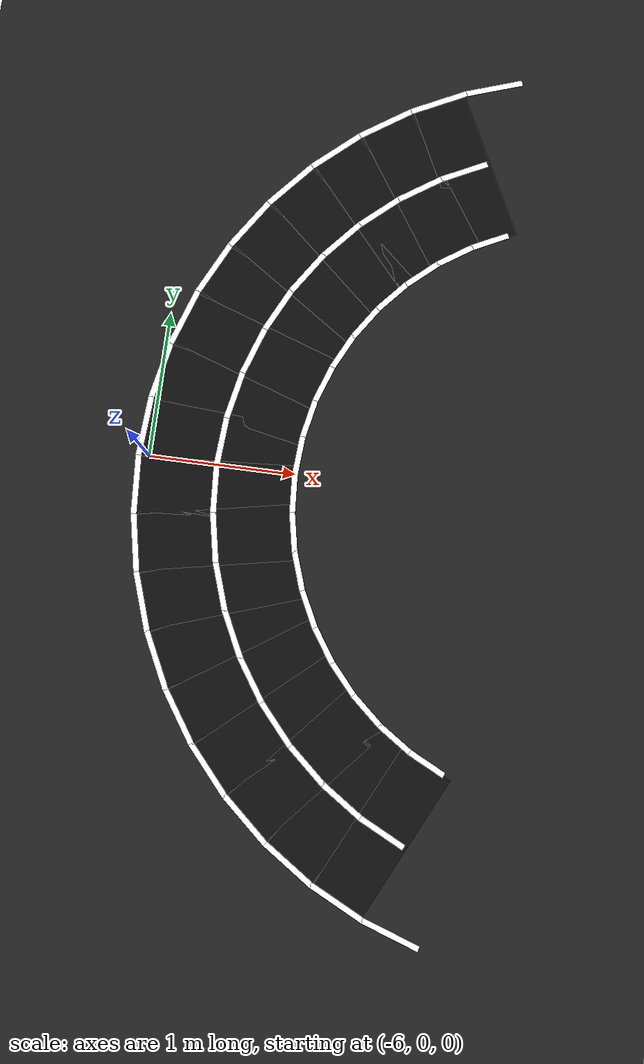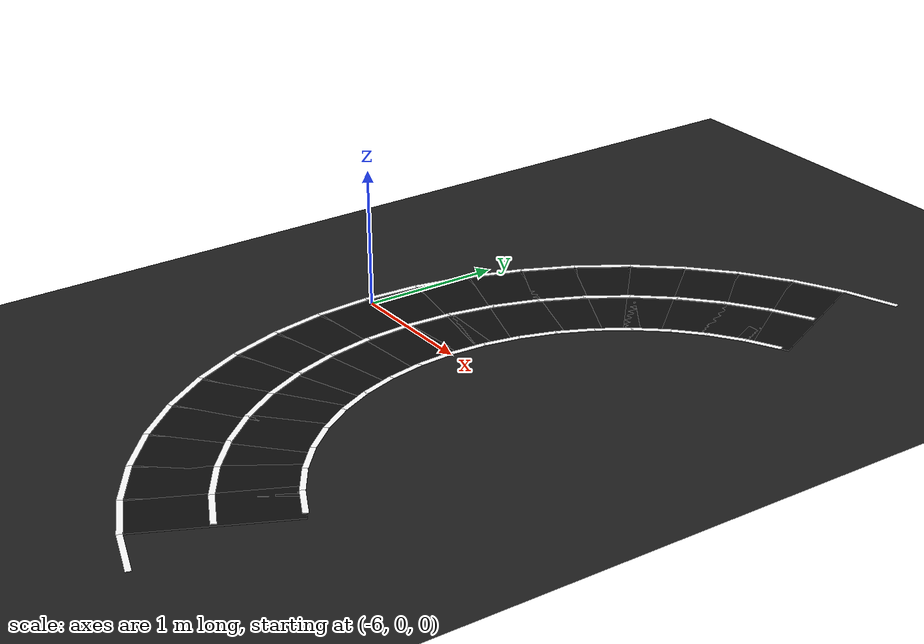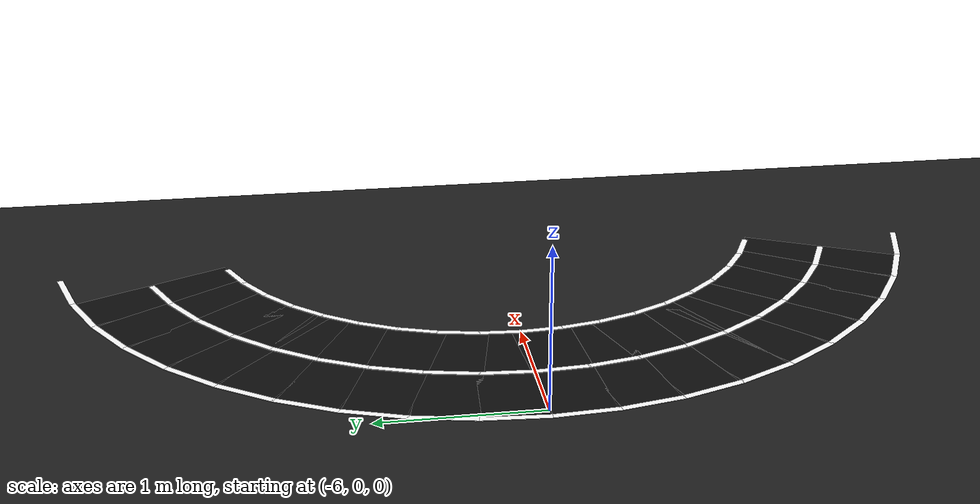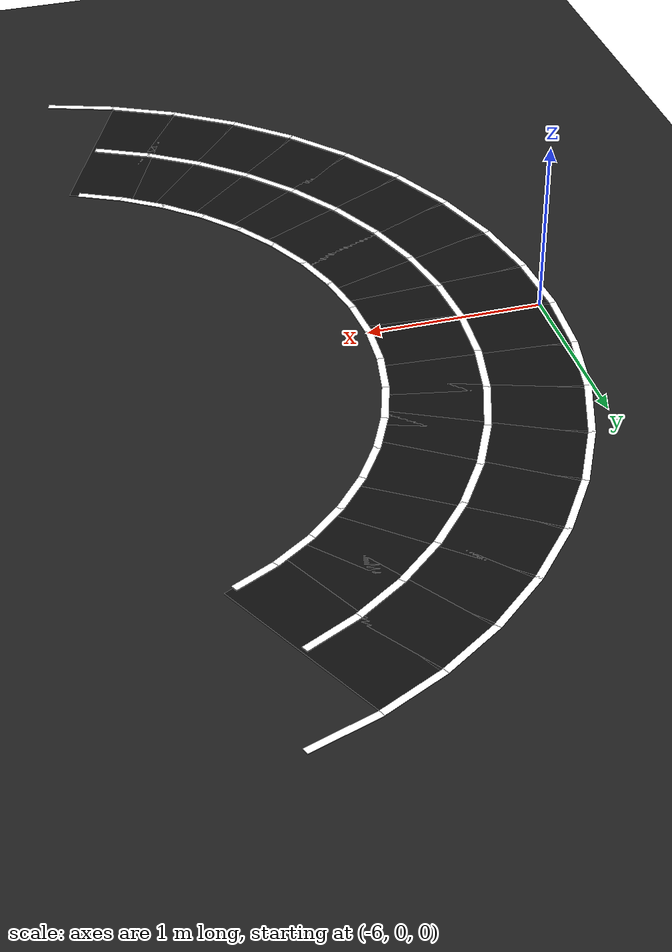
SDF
<sdf version="1.6">
 <world name="oval_lane_world">
  <model name="ground_plane">
   <static>true</static>
   <link name="link">
    <collision name="collision">
     <geometry><plane><normal>0 0 1</normal><size>100 100</size></plane></geometry>
     <surface><friction><ode><mu>1.0</mu><mu2>1.0</mu2></ode></friction></surface>
    </collision>
    <visual name="visual">
     <geometry><plane><normal>0 0 1</normal><size>100 100</size></plane></geometry>
     <material><ambient>0.10 0.10 0.10 1</ambient><diffuse>0.12 0.12 0.12 1</diffuse></material>
    </visual>
   </link>
  </model>
  <model name="cl_l_2_2">
   <static>true</static>
   <pose>-3.98617 -2.90518 0.00700 0 0 2.81434</pose>
   <link name="link">
    <visual name="visual">
     <geometry><box><size>0.41160 0.04000 0.00400</size></box></geometry>
     <material>
      <ambient>1.000 1.000 1.000 1</ambient>
      <diffuse>1.000 1.000 1.000 1</diffuse>
      <specular>0.05 0.05 0.05 1</specular>
     </material>
    </visual>
   </link>
  </model>
  <model name="road_l_3">
   <static>true</static>
   <pose>-4.11744 -2.26595 0.00250 0.0 0.0 2.68344</pose>
   <link name="link">
    <visual name="visual">
     <geometry><box><size>0.38165 1.06800 0.00500</size></box></geometry>
     <material>
      <ambient>0.030 0.030 0.030 1</ambient>
      <diffuse>0.050 0.050 0.050 1</diffuse>
      <specular>0.05 0.05 0.05 1</specular>
     </material>
    </visual>
   </link>
  </model>
  <model name="cl_l_0_3">
   <static>true</static>
   <pose>-3.88458 -1.79375 0.00700 0 0 2.68344</pose>
   <link name="link">
    <visual name="visual">
     <geometry><box><size>0.27180 0.04000 0.00400</size></box></geometry>
     <material>
      <ambient>1.000 1.000 1.000 1</ambient>
      <diffuse>1.000 1.000 1.000 1</diffuse>
      <specular>0.05 0.05 0.05 1</specular>
     </material>
    </visual>
   </link>
  </model>
  <model name="cl_l_1_3">
   <static>true</static>
   <pose>-4.12076 -2.27268 0.00700 0 0 2.68344</pose>
   <link name="link">
    <visual name="visual">
     <geometry><box><size>0.34170 0.04000 0.00400</size></box></geometry>
     <material>
      <ambient>1.000 1.000 1.000 1</ambient>
      <diffuse>1.000 1.000 1.000 1</diffuse>
      <specular>0.05 0.05 0.05 1</specular>
     </material>
    </visual>
   </link>
  </model>
  <model name="cl_l_2_3">
   <static>true</static>
   <pose>-4.35694 -2.75161 0.00700 0 0 2.68344</pose>
   <link name="link">
    <visual name="visual">
     <geometry><box><size>0.41160 0.04000 0.00400</size></box></geometry>
     <material>
      <ambient>1.000 1.000 1.000 1</ambient>
      <diffuse>1.000 1.000 1.000 1</diffuse>
      <specular>0.05 0.05 0.05 1</specular>
     </material>
    </visual>
   </link>
  </model>
  <model name="road_l_4">
   <static>true</static>
   <pose>-4.40365 -2.10071 0.00250 0.0 0.0 2.55254</pose>
   <link name="link">
    <visual name="visual">
     <geometry><box><size>0.38165 1.06800 0.00500</size></box></geometry>
     <material>
      <ambient>0.030 0.030 0.030 1</ambient>
      <diffuse>0.050 0.050 0.050 1</diffuse>
      <specular>0.05 0.05 0.05 1</specular>
     </material>
    </visual>
   </link>
  </model>
  <model name="cl_l_0_4">
   <static>true</static>
   <pose>-4.11114 -1.66294 0.00700 0 0 2.55254</pose>
   <link name="link">
    <visual name="visual">
     <geometry><box><size>0.27180 0.04000 0.00400</size></box></geometry>
     <material>
      <ambient>1.000 1.000 1.000 1</ambient>
      <diffuse>1.000 1.000 1.000 1</diffuse>
      <specular>0.05 0.05 0.05 1</specular>
     </material>
    </visual>
   </link>
  </model>
  <model name="cl_l_1_4">
   <static>true</static>
   <pose>-4.40781 -2.10694 0.00700 0 0 2.55254</pose>
   <link name="link">
    <visual name="visual">
     <geometry><box><size>0.34170 0.04000 0.00400</size></box></geometry>
     <material>
      <ambient>1.000 1.000 1.000 1</ambient>
      <diffuse>1.000 1.000 1.000 1</diffuse>
      <specular>0.05 0.05 0.05 1</specular>
     </material>
    </visual>
   </link>
  </model>
  <model name="cl_l_2_4">
   <static>true</static>
   <pose>-4.70449 -2.55095 0.00700 0 0 2.55254</pose>
   <link name="link">
    <visual name="visual">
     <geometry><box><size>0.41160 0.04000 0.00400</size></box></geometry>
     <material>
      <ambient>1.000 1.000 1.000 1</ambient>
      <diffuse>1.000 1.000 1.000 1</diffuse>
      <specular>0.05 0.05 0.05 1</specular>
     </material>
    </visual>
   </link>
  </model>
  <model name="road_l_5">
   <static>true</static>
   <pose>-4.66584 -1.89952 0.00250 0.0 0.0 2.42164</pose>
   <link name="link">
    <visual name="visual">
     <geometry><box><size>0.38165 1.06800 0.00500</size></box></geometry>
     <material>
      <ambient>0.030 0.030 0.030 1</ambient>
      <diffuse>0.050 0.050 0.050 1</diffuse>
      <specular>0.05 0.05 0.05 1</specular>
     </material>
    </visual>
   </link>
  </model>
  <model name="cl_l_0_5">
   <static>true</static>
   <pose>-4.31869 -1.50368 0.00700 0 0 2.42164</pose>
   <link name="link">
    <visual name="visual">
     <geometry><box><size>0.27180 0.04000 0.00400</size></box></geometry>
     <material>
      <ambient>1.000 1.000 1.000 1</ambient>
      <diffuse>1.000 1.000 1.000 1</diffuse>
      <specular>0.05 0.05 0.05 1</specular>
     </material>
    </visual>
   </link>
  </model>
  <model name="cl_l_1_5">
   <static>true</static>
   <pose>-4.67078 -1.90516 0.00700 0 0 2.42164</pose>
   <link name="link">
    <visual name="visual">
     <geometry><box><size>0.34170 0.04000 0.00400</size></box></geometry>
     <material>
      <ambient>1.000 1.000 1.000 1</ambient>
      <diffuse>1.000 1.000 1.000 1</diffuse>
      <specular>0.05 0.05 0.05 1</specular>
     </material>
    </visual>
   </link>
  </model>
  <model name="cl_l_2_5">
   <static>true</static>
   <pose>-5.02287 -2.30664 0.00700 0 0 2.42164</pose>
   <link name="link">
    <visual name="visual">
     <geometry><box><size>0.41160 0.04000 0.00400</size></box></geometry>
     <material>
      <ambient>1.000 1.000 1.000 1</ambient>
      <diffuse>1.000 1.000 1.000 1</diffuse>
      <specular>0.05 0.05 0.05 1</specular>
     </material>
    </visual>
   </link>
  </model>
  <model name="road_l_6">
   <static>true</static>
   <pose>-4.89952 -1.66584 0.00250 0.0 0.0 2.29074</pose>
   <link name="link">
    <visual name="visual">
     <geometry><box><size>0.38165 1.06800 0.00500</size></box></geometry>
     <material>
      <ambient>0.030 0.030 0.030 1</ambient>
      <diffuse>0.050 0.050 0.050 1</diffuse>
      <specular>0.05 0.05 0.05 1</specular>
     </material>
    </visual>
   </link>
  </model>
  <model name="cl_l_0_6">
   <static>true</static>
   <pose>-4.50368 -1.31869 0.00700 0 0 2.29074</pose>
   <link name="link">
    <visual name="visual">
     <geometry><box><size>0.27180 0.04000 0.00400</size></box></geometry>
     <material>
      <ambient>1.000 1.000 1.000 1</ambient>
      <diffuse>1.000 1.000 1.000 1</diffuse>
      <specular>0.05 0.05 0.05 1</specular>
     </material>
    </visual>
   </link>
  </model>
  <model name="cl_l_1_6">
   <static>true</static>
   <pose>-4.90516 -1.67078 0.00700 0 0 2.29074</pose>
   <link name="link">
    <visual name="visual">
     <geometry><box><size>0.34170 0.04000 0.00400</size></box></geometry>
     <material>
      <ambient>1.000 1.000 1.000 1</ambient>
      <diffuse>1.000 1.000 1.000 1</diffuse>
      <specular>0.05 0.05 0.05 1</specular>
     </material>
    </visual>
   </link>
  </model>
  <model name="cl_l_2_6">
   <static>true</static>
   <pose>-5.30665 -2.02287 0.00700 0 0 2.29074</pose>
   <link name="link">
    <visual name="visual">
     <geometry><box><size>0.41160 0.04000 0.00400</size></box></geometry>
     <material>
      <ambient>1.000 1.000 1.000 1</ambient>
      <diffuse>1.000 1.000 1.000 1</diffuse>
      <specular>0.05 0.05 0.05 1</specular>
     </material>
    </visual>
   </link>
  </model>
  <model name="road_l_7">
   <static>true</static>
   <pose>-5.10071 -1.40365 0.00250 0.0 0.0 2.15984</pose>
   <link name="link">
    <visual name="visual">
     <geometry><box><size>0.38165 1.06800 0.00500</size></box></geometry>
     <material>
      <ambient>0.030 0.030 0.030 1</ambient>
      <diffuse>0.050 0.050 0.050 1</diffuse>
      <specular>0.05 0.05 0.05 1</specular>
     </material>
    </visual>
   </link>
  </model>
  <model name="cl_l_0_7">
   <static>true</static>
   <pose>-4.66294 -1.11114 0.00700 0 0 2.15984</pose>
   <link name="link">
    <visual name="visual">
     <geometry><box><size>0.27180 0.04000 0.00400</size></box></geometry>
     <material>
      <ambient>1.000 1.000 1.000 1</ambient>
      <diffuse>1.000 1.000 1.000 1</diffuse>
      <specular>0.05 0.05 0.05 1</specular>
     </material>
    </visual>
   </link>
  </model>
  <model name="cl_l_1_7">
   <static>true</static>
   <pose>-5.10694 -1.40781 0.00700 0 0 2.15984</pose>
   <link name="link">
    <visual name="visual">
     <geometry><box><size>0.34170 0.04000 0.00400</size></box></geometry>
     <material>
      <ambient>1.000 1.000 1.000 1</ambient>
      <diffuse>1.000 1.000 1.000 1</diffuse>
      <specular>0.05 0.05 0.05 1</specular>
     </material>
    </visual>
   </link>
  </model>
  <model name="cl_l_2_7">
   <static>true</static>
   <pose>-5.55095 -1.70449 0.00700 0 0 2.15984</pose>
   <link name="link">
    <visual name="visual">
     <geometry><box><size>0.41160 0.04000 0.00400</size></box></geometry>
     <material>
      <ambient>1.000 1.000 1.000 1</ambient>
      <diffuse>1.000 1.000 1.000 1</diffuse>
      <specular>0.05 0.05 0.05 1</specular>
     </material>
    </visual>
   </link>
  </model>
  <model name="road_l_8">
   <static>true</static>
   <pose>-5.26595 -1.11744 0.00250 0.0 0.0 2.02895</pose>
   <link name="link">
    <visual name="visual">
     <geometry><box><size>0.38165 1.06800 0.00500</size></box></geometry>
     <material>
      <ambient>0.030 0.030 0.030 1</ambient>
      <diffuse>0.050 0.050 0.050 1</diffuse>
      <specular>0.05 0.05 0.05 1</specular>
     </material>
    </visual>
   </link>
  </model>
  <model name="cl_l_0_8">
   <static>true</static>
   <pose>-4.79375 -0.88458 0.00700 0 0 2.02895</pose>
   <link name="link">
    <visual name="visual">
     <geometry><box><size>0.27180 0.04000 0.00400</size></box></geometry>
     <material>
      <ambient>1.000 1.000 1.000 1</ambient>
      <diffuse>1.000 1.000 1.000 1</diffuse>
      <specular>0.05 0.05 0.05 1</specular>
     </material>
    </visual>
   </link>
  </model>
  <model name="cl_l_1_8">
   <static>true</static>
   <pose>-5.27268 -1.12076 0.00700 0 0 2.02895</pose>
   <link name="link">
    <visual name="visual">
     <geometry><box><size>0.34170 0.04000 0.00400</size></box></geometry>
     <material>
      <ambient>1.000 1.000 1.000 1</ambient>
      <diffuse>1.000 1.000 1.000 1</diffuse>
      <specular>0.05 0.05 0.05 1</specular>
     </material>
    </visual>
   </link>
  </model>
  <model name="cl_l_2_8">
   <static>true</static>
   <pose>-5.75161 -1.35694 0.00700 0 0 2.02895</pose>
   <link name="link">
    <visual name="visual">
     <geometry><box><size>0.41160 0.04000 0.00400</size></box></geometry>
     <material>
      <ambient>1.000 1.000 1.000 1</ambient>
      <diffuse>1.000 1.000 1.000 1</diffuse>
      <specular>0.05 0.05 0.05 1</specular>
     </material>
    </visual>
   </link>
  </model>
  <model name="road_l_9">
   <static>true</static>
   <pose>-5.39242 -0.81211 0.00250 0.0 0.0 1.89805</pose>
   <link name="link">
    <visual name="visual">
     <geometry><box><size>0.38165 1.06800 0.00500</size></box></geometry>
     <material>
      <ambient>0.030 0.030 0.030 1</ambient>
      <diffuse>0.050 0.050 0.050 1</diffuse>
      <specular>0.05 0.05 0.05 1</specular>
     </material>
    </visual>
   </link>
  </model>
  <model name="cl_l_0_9">
   <static>true</static>
   <pose>-4.89386 -0.64288 0.00700 0 0 1.89805</pose>
   <link name="link">
    <visual name="visual">
     <geometry><box><size>0.27180 0.04000 0.00400</size></box></geometry>
     <material>
      <ambient>1.000 1.000 1.000 1</ambient>
      <diffuse>1.000 1.000 1.000 1</diffuse>
      <specular>0.05 0.05 0.05 1</specular>
     </material>
    </visual>
   </link>
  </model>
  <model name="cl_l_1_9">
   <static>true</static>
   <pose>-5.39952 -0.81453 0.00700 0 0 1.89805</pose>
   <link name="link">
    <visual name="visual">
     <geometry><box><size>0.34170 0.04000 0.00400</size></box></geometry>
     <material>
      <ambient>1.000 1.000 1.000 1</ambient>
      <diffuse>1.000 1.000 1.000 1</diffuse>
      <specular>0.05 0.05 0.05 1</specular>
     </material>
    </visual>
   </link>
  </model>
  <model name="cl_l_2_9">
   <static>true</static>
   <pose>-5.90518 -0.98618 0.00700 0 0 1.89805</pose>
   <link name="link">
    <visual name="visual">
     <geometry><box><size>0.41160 0.04000 0.00400</size></box></geometry>
     <material>
      <ambient>1.000 1.000 1.000 1</ambient>
      <diffuse>1.000 1.000 1.000 1</diffuse>
      <specular>0.05 0.05 0.05 1</specular>
     </material>
    </visual>
   </link>
  </model>
  <model name="road_l_10">
   <static>true</static>
   <pose>-5.47795 -0.49290 0.00250 0.0 0.0 1.76715</pose>
   <link name="link">
    <visual name="visual">
     <geometry><box><size>0.38165 1.06800 0.00500</size></box></geometry>
     <material>
      <ambient>0.030 0.030 0.030 1</ambient>
      <diffuse>0.050 0.050 0.050 1</diffuse>
      <specular>0.05 0.05 0.05 1</specular>
     </material>
    </visual>
   </link>
  </model>
  <model name="cl_l_0_10">
   <static>true</static>
   <pose>-4.96157 -0.39018 0.00700 0 0 1.76715</pose>
   <link name="link">
    <visual name="visual">
     <geometry><box><size>0.27180 0.04000 0.00400</size></box></geometry>
     <material>
      <ambient>1.000 1.000 1.000 1</ambient>
      <diffuse>1.000 1.000 1.000 1</diffuse>
      <specular>0.05 0.05 0.05 1</specular>
     </material>
    </visual>
   </link>
  </model>
  <model name="cl_l_1_10">
   <static>true</static>
   <pose>-5.48531 -0.49436 0.00700 0 0 1.76715</pose>
   <link name="link">
    <visual name="visual">
     <geometry><box><size>0.34170 0.04000 0.00400</size></box></geometry>
     <material>
      <ambient>1.000 1.000 1.000 1</ambient>
      <diffuse>1.000 1.000 1.000 1</diffuse>
      <specular>0.05 0.05 0.05 1</specular>
     </material>
    </visual>
   </link>
  </model>
  <model name="cl_l_2_10">
   <static>true</static>
   <pose>-6.00905 -0.59854 0.00700 0 0 1.76715</pose>
   <link name="link">
    <visual name="visual">
     <geometry><box><size>0.41160 0.04000 0.00400</size></box></geometry>
     <material>
      <ambient>1.000 1.000 1.000 1</ambient>
      <diffuse>1.000 1.000 1.000 1</diffuse>
      <specular>0.05 0.05 0.05 1</specular>
     </material>
    </visual>
   </link>
  </model>
  <model name="road_l_11">
   <static>true</static>
   <pose>-5.52109 -0.16524 0.00250 0.0 0.0 1.63625</pose>
   <link name="link">
    <visual name="visual">
     <geometry><box><size>0.38165 1.06800 0.00500</size></box></geometry>
     <material>
      <ambient>0.030 0.030 0.030 1</ambient>
      <diffuse>0.050 0.050 0.050 1</diffuse>
      <specular>0.05 0.05 0.05 1</specular>
     </material>
    </visual>
   </link>
  </model>
  <model name="cl_l_0_11">
   <static>true</static>
   <pose>-4.99572 -0.13081 0.00700 0 0 1.63625</pose>
   <link name="link">
    <visual name="visual">
     <geometry><box><size>0.27180 0.04000 0.00400</size></box></geometry>
     <material>
      <ambient>1.000 1.000 1.000 1</ambient>
      <diffuse>1.000 1.000 1.000 1</diffuse>
      <specular>0.05 0.05 0.05 1</specular>
     </material>
    </visual>
   </link>
  </model>
  <model name="cl_l_1_11">
   <static>true</static>
   <pose>-5.52858 -0.16573 0.00700 0 0 1.63625</pose>
   <link name="link">
    <visual name="visual">
     <geometry><box><size>0.34170 0.04000 0.00400</size></box></geometry>
     <material>
      <ambient>1.000 1.000 1.000 1</ambient>
      <diffuse>1.000 1.000 1.000 1</diffuse>
      <specular>0.05 0.05 0.05 1</specular>
     </material>
    </visual>
   </link>
  </model>
  <model name="cl_l_2_11">
   <static>true</static>
   <pose>-6.06143 -0.20066 0.00700 0 0 1.63625</pose>
   <link name="link">
    <visual name="visual">
     <geometry><box><size>0.41160 0.04000 0.00400</size></box></geometry>
     <material>
      <ambient>1.000 1.000 1.000 1</ambient>
      <diffuse>1.000 1.000 1.000 1</diffuse>
      <specular>0.05 0.05 0.05 1</specular>
     </material>
    </visual>
   </link>
  </model>
  <model name="road_l_12">
   <static>true</static>
   <pose>-5.52109 0.16524 0.00250 0.0 0.0 1.50535</pose>
   <link name="link">
    <visual name="visual">
     <geometry><box><size>0.38165 1.06800 0.00500</size></box></geometry>
     <material>
      <ambient>0.030 0.030 0.030 1</ambient>
      <diffuse>0.050 0.050 0.050 1</diffuse>
      <specular>0.05 0.05 0.05 1</specular>
     </material>
    </visual>
   </link>
  </model>
  <model name="cl_l_0_12">
   <static>true</static>
   <pose>-4.99572 0.13081 0.00700 0 0 1.50535</pose>
   <link name="link">
    <visual name="visual">
     <geometry><box><size>0.27180 0.04000 0.00400</size></box></geometry>
     <material>
      <ambient>1.000 1.000 1.000 1</ambient>
      <diffuse>1.000 1.000 1.000 1</diffuse>
      <specular>0.05 0.05 0.05 1</specular>
     </material>
    </visual>
   </link>
  </model>
  <model name="cl_l_1_12">
   <static>true</static>
   <pose>-5.52857 0.16573 0.00700 0 0 1.50535</pose>
   <link name="link">
    <visual name="visual">
     <geometry><box><size>0.34170 0.04000 0.00400</size></box></geometry>
     <material>
      <ambient>1.000 1.000 1.000 1</ambient>
      <diffuse>1.000 1.000 1.000 1</diffuse>
      <specular>0.05 0.05 0.05 1</specular>
     </material>
    </visual>
   </link>
  </model>
  <model name="cl_l_2_12">
   <static>true</static>
   <pose>-6.06143 0.20066 0.00700 0 0 1.50535</pose>
   <link name="link">
    <visual name="visual">
     <geometry><box><size>0.41160 0.04000 0.00400</size></box></geometry>
     <material>
      <ambient>1.000 1.000 1.000 1</ambient>
      <diffuse>1.000 1.000 1.000 1</diffuse>
      <specular>0.05 0.05 0.05 1</specular>
     </material>
    </visual>
   </link>
  </model>
  <model name="road_l_13">
   <static>true</static>
   <pose>-5.47795 0.49290 0.00250 0.0 0.0 1.37445</pose>
   <link name="link">
    <visual name="visual">
     <geometry><box><size>0.38165 1.06800 0.00500</size></box></geometry>
     <material>
      <ambient>0.030 0.030 0.030 1</ambient>
      <diffuse>0.050 0.050 0.050 1</diffuse>
      <specular>0.05 0.05 0.05 1</specular>
     </material>
    </visual>
   </link>
  </model>
  <model name="cl_l_0_13">
   <static>true</static>
   <pose>-4.96157 0.39018 0.00700 0 0 1.37445</pose>
   <link name="link">
    <visual name="visual">
     <geometry><box><size>0.27180 0.04000 0.00400</size></box></geometry>
     <material>
      <ambient>1.000 1.000 1.000 1</ambient>
      <diffuse>1.000 1.000 1.000 1</diffuse>
      <specular>0.05 0.05 0.05 1</specular>
     </material>
    </visual>
   </link>
  </model>
  <model name="cl_l_1_13">
   <static>true</static>
   <pose>-5.48531 0.49436 0.00700 0 0 1.37445</pose>
   <link name="link">
    <visual name="visual">
     <geometry><box><size>0.34170 0.04000 0.00400</size></box></geometry>
     <material>
      <ambient>1.000 1.000 1.000 1</ambient>
      <diffuse>1.000 1.000 1.000 1</diffuse>
      <specular>0.05 0.05 0.05 1</specular>
     </material>
    </visual>
   </link>
  </model>
  <model name="cl_l_2_13">
   <static>true</static>
   <pose>-6.00905 0.59854 0.00700 0 0 1.37445</pose>
   <link name="link">
    <visual name="visual">
     <geometry><box><size>0.41160 0.04000 0.00400</size></box></geometry>
     <material>
      <ambient>1.000 1.000 1.000 1</ambient>
      <diffuse>1.000 1.000 1.000 1</diffuse>
      <specular>0.05 0.05 0.05 1</specular>
     </material>
    </visual>
   </link>
  </model>
  <model name="road_l_14">
   <static>true</static>
   <pose>-5.39242 0.81212 0.00250 0.0 0.0 1.24355</pose>
   <link name="link">
    <visual name="visual">
     <geometry><box><size>0.38165 1.06800 0.00500</size></box></geometry>
     <material>
      <ambient>0.030 0.030 0.030 1</ambient>
      <diffuse>0.050 0.050 0.050 1</diffuse>
      <specular>0.05 0.05 0.05 1</specular>
     </material>
    </visual>
   </link>
  </model>
  <model name="cl_l_0_14">
   <static>true</static>
   <pose>-4.89386 0.64288 0.00700 0 0 1.24355</pose>
   <link name="link">
    <visual name="visual">
     <geometry><box><size>0.27180 0.04000 0.00400</size></box></geometry>
     <material>
      <ambient>1.000 1.000 1.000 1</ambient>
      <diffuse>1.000 1.000 1.000 1</diffuse>
      <specular>0.05 0.05 0.05 1</specular>
     </material>
    </visual>
   </link>
  </model>
  <model name="cl_l_1_14">
   <static>true</static>
   <pose>-5.39952 0.81453 0.00700 0 0 1.24355</pose>
   <link name="link">
    <visual name="visual">
     <geometry><box><size>0.34170 0.04000 0.00400</size></box></geometry>
     <material>
      <ambient>1.000 1.000 1.000 1</ambient>
      <diffuse>1.000 1.000 1.000 1</diffuse>
      <specular>0.05 0.05 0.05 1</specular>
     </material>
    </visual>
   </link>
  </model>
  <model name="cl_l_2_14">
   <static>true</static>
   <pose>-5.90518 0.98617 0.00700 0 0 1.24355</pose>
   <link name="link">
    <visual name="visual">
     <geometry><box><size>0.41160 0.04000 0.00400</size></box></geometry>
     <material>
      <ambient>1.000 1.000 1.000 1</ambient>
      <diffuse>1.000 1.000 1.000 1</diffuse>
      <specular>0.05 0.05 0.05 1</specular>
     </material>
    </visual>
   </link>
  </model>
  <model name="road_l_15">
   <static>true</static>
   <pose>-5.26595 1.11744 0.00250 0.0 0.0 1.11265</pose>
   <link name="link">
    <visual name="visual">
     <geometry><box><size>0.38165 1.06800 0.00500</size></box></geometry>
     <material>
      <ambient>0.030 0.030 0.030 1</ambient>
      <diffuse>0.050 0.050 0.050 1</diffuse>
      <specular>0.05 0.05 0.05 1</specular>
     </material>
    </visual>
   </link>
  </model>
  <model name="cl_l_0_15">
   <static>true</static>
   <pose>-4.79375 0.88458 0.00700 0 0 1.11265</pose>
   <link name="link">
    <visual name="visual">
     <geometry><box><size>0.27180 0.04000 0.00400</size></box></geometry>
     <material>
      <ambient>1.000 1.000 1.000 1</ambient>
      <diffuse>1.000 1.000 1.000 1</diffuse>
      <specular>0.05 0.05 0.05 1</specular>
     </material>
    </visual>
   </link>
  </model>
  <model name="cl_l_1_15">
   <static>true</static>
   <pose>-5.27268 1.12076 0.00700 0 0 1.11265</pose>
   <link name="link">
    <visual name="visual">
     <geometry><box><size>0.34170 0.04000 0.00400</size></box></geometry>
     <material>
      <ambient>1.000 1.000 1.000 1</ambient>
      <diffuse>1.000 1.000 1.000 1</diffuse>
      <specular>0.05 0.05 0.05 1</specular>
     </material>
    </visual>
   </link>
  </model>
  <model name="cl_l_2_15">
   <static>true</static>
   <pose>-5.75161 1.35694 0.00700 0 0 1.11265</pose>
   <link name="link">
    <visual name="visual">
     <geometry><box><size>0.41160 0.04000 0.00400</size></box></geometry>
     <material>
      <ambient>1.000 1.000 1.000 1</ambient>
      <diffuse>1.000 1.000 1.000 1</diffuse>
      <specular>0.05 0.05 0.05 1</specular>
     </material>
    </visual>
   </link>
  </model>
  <model name="road_l_16">
   <static>true</static>
   <pose>-5.10071 1.40365 0.00250 0.0 0.0 0.98175</pose>
   <link name="link">
    <visual name="visual">
     <geometry><box><size>0.38165 1.06800 0.00500</size></box></geometry>
     <material>
      <ambient>0.030 0.030 0.030 1</ambient>
      <diffuse>0.050 0.050 0.050 1</diffuse>
      <specular>0.05 0.05 0.05 1</specular>
     </material>
    </visual>
   </link>
  </model>
  <model name="cl_l_0_16">
   <static>true</static>
   <pose>-4.66294 1.11114 0.00700 0 0 0.98175</pose>
   <link name="link">
    <visual name="visual">
     <geometry><box><size>0.27180 0.04000 0.00400</size></box></geometry>
     <material>
      <ambient>1.000 1.000 1.000 1</ambient>
      <diffuse>1.000 1.000 1.000 1</diffuse>
      <specular>0.05 0.05 0.05 1</specular>
     </material>
    </visual>
   </link>
  </model>
  <model name="cl_l_1_16">
   <static>true</static>
   <pose>-5.10694 1.40781 0.00700 0 0 0.98175</pose>
   <link name="link">
    <visual name="visual">
     <geometry><box><size>0.34170 0.04000 0.00400</size></box></geometry>
     <material>
      <ambient>1.000 1.000 1.000 1</ambient>
      <diffuse>1.000 1.000 1.000 1</diffuse>
      <specular>0.05 0.05 0.05 1</specular>
     </material>
    </visual>
   </link>
  </model>
  <model name="cl_l_2_16">
   <static>true</static>
   <pose>-5.55095 1.70449 0.00700 0 0 0.98175</pose>
   <link name="link">
    <visual name="visual">
     <geometry><box><size>0.41160 0.04000 0.00400</size></box></geometry>
     <material>
      <ambient>1.000 1.000 1.000 1</ambient>
      <diffuse>1.000 1.000 1.000 1</diffuse>
      <specular>0.05 0.05 0.05 1</specular>
     </material>
    </visual>
   </link>
  </model>
  <model name="road_l_17">
   <static>true</static>
   <pose>-4.89952 1.66584 0.00250 0.0 0.0 0.85085</pose>
   <link name="link">
    <visual name="visual">
     <geometry><box><size>0.38165 1.06800 0.00500</size></box></geometry>
     <material>
      <ambient>0.030 0.030 0.030 1</ambient>
      <diffuse>0.050 0.050 0.050 1</diffuse>
      <specular>0.05 0.05 0.05 1</specular>
     </material>
    </visual>
   </link>
  </model>
  <model name="cl_l_0_17">
   <static>true</static>
   <pose>-4.50368 1.31869 0.00700 0 0 0.85085</pose>
   <link name="link">
    <visual name="visual">
     <geometry><box><size>0.27180 0.04000 0.00400</size></box></geometry>
     <material>
      <ambient>1.000 1.000 1.000 1</ambient>
      <diffuse>1.000 1.000 1.000 1</diffuse>
      <specular>0.05 0.05 0.05 1</specular>
     </material>
    </visual>
   </link>
  </model>
  <model name="cl_l_1_17">
   <static>true</static>
   <pose>-4.90516 1.67078 0.00700 0 0 0.85085</pose>
   <link name="link">
    <visual name="visual">
     <geometry><box><size>0.34170 0.04000 0.00400</size></box></geometry>
     <material>
      <ambient>1.000 1.000 1.000 1</ambient>
      <diffuse>1.000 1.000 1.000 1</diffuse>
      <specular>0.05 0.05 0.05 1</specular>
     </material>
    </visual>
   </link>
  </model>
  <model name="cl_l_2_17">
   <static>true</static>
   <pose>-5.30664 2.02287 0.00700 0 0 0.85085</pose>
   <link name="link">
    <visual name="visual">
     <geometry><box><size>0.41160 0.04000 0.00400</size></box></geometry>
     <material>
      <ambient>1.000 1.000 1.000 1</ambient>
      <diffuse>1.000 1.000 1.000 1</diffuse>
      <specular>0.05 0.05 0.05 1</specular>
     </material>
    </visual>
   </link>
  </model>
  <model name="road_l_18">
   <static>true</static>
   <pose>-4.66584 1.89952 0.00250 0.0 0.0 0.71995</pose>
   <link name="link">
    <visual name="visual">
     <geometry><box><size>0.38165 1.06800 0.00500</size></box></geometry>
     <material>
      <ambient>0.030 0.030 0.030 1</ambient>
      <diffuse>0.050 0.050 0.050 1</diffuse>
      <specular>0.05 0.05 0.05 1</specular>
     </material>
    </visual>
   </link>
  </model>
  <model name="cl_l_0_18">
   <static>true</static>
   <pose>-4.31869 1.50368 0.00700 0 0 0.71995</pose>
   <link name="link">
    <visual name="visual">
     <geometry><box><size>0.27180 0.04000 0.00400</size></box></geometry>
     <material>
      <ambient>1.000 1.000 1.000 1</ambient>
      <diffuse>1.000 1.000 1.000 1</diffuse>
      <specular>0.05 0.05 0.05 1</specular>
     </material>
    </visual>
   </link>
  </model>
  <model name="cl_l_1_18">
   <static>true</static>
   <pose>-4.67078 1.90516 0.00700 0 0 0.71995</pose>
   <link name="link">
    <visual name="visual">
     <geometry><box><size>0.34170 0.04000 0.00400</size></box></geometry>
     <material>
      <ambient>1.000 1.000 1.000 1</ambient>
      <diffuse>1.000 1.000 1.000 1</diffuse>
      <specular>0.05 0.05 0.05 1</specular>
     </material>
    </visual>
   </link>
  </model>
  <model name="cl_l_2_18">
   <static>true</static>
   <pose>-5.02287 2.30665 0.00700 0 0 0.71995</pose>
   <link name="link">
    <visual name="visual">
     <geometry><box><size>0.41160 0.04000 0.00400</size></box></geometry>
     <material>
      <ambient>1.000 1.000 1.000 1</ambient>
      <diffuse>1.000 1.000 1.000 1</diffuse>
      <specular>0.05 0.05 0.05 1</specular>
     </material>
    </visual>
   </link>
  </model>
  <model name="road_l_19">
   <static>true</static>
   <pose>-4.40365 2.10071 0.00250 0.0 0.0 0.58905</pose>
   <link name="link">
    <visual name="visual">
     <geometry><box><size>0.38165 1.06800 0.00500</size></box></geometry>
     <material>
      <ambient>0.030 0.030 0.030 1</ambient>
      <diffuse>0.050 0.050 0.050 1</diffuse>
      <specular>0.05 0.05 0.05 1</specular>
     </material>
    </visual>
   </link>
  </model>
  <model name="cl_l_0_19">
   <static>true</static>
   <pose>-4.11114 1.66294 0.00700 0 0 0.58905</pose>
   <link name="link">
    <visual name="visual">
     <geometry><box><size>0.27180 0.04000 0.00400</size></box></geometry>
     <material>
      <ambient>1.000 1.000 1.000 1</ambient>
      <diffuse>1.000 1.000 1.000 1</diffuse>
      <specular>0.05 0.05 0.05 1</specular>
     </material>
    </visual>
   </link>
  </model>
  <model name="cl_l_1_19">
   <static>true</static>
   <pose>-4.40781 2.10694 0.00700 0 0 0.58905</pose>
   <link name="link">
    <visual name="visual">
     <geometry><box><size>0.34170 0.04000 0.00400</size></box></geometry>
     <material>
      <ambient>1.000 1.000 1.000 1</ambient>
      <diffuse>1.000 1.000 1.000 1</diffuse>
      <specular>0.05 0.05 0.05 1</specular>
     </material>
    </visual>
   </link>
  </model>
  <model name="cl_l_2_19">
   <static>true</static>
   <pose>-4.70449 2.55095 0.00700 0 0 0.58905</pose>
   <link name="link">
    <visual name="visual">
     <geometry><box><size>0.41160 0.04000 0.00400</size></box></geometry>
     <material>
      <ambient>1.000 1.000 1.000 1</ambient>
      <diffuse>1.000 1.000 1.000 1</diffuse>
      <specular>0.05 0.05 0.05 1</specular>
     </material>
    </visual>
   </link>
  </model>
  <model name="road_l_20">
   <static>true</static>
   <pose>-4.11744 2.26595 0.00250 0.0 0.0 0.45815</pose>
   <link name="link">
    <visual name="visual">
     <geometry><box><size>0.38165 1.06800 0.00500</size></box></geometry>
     <material>
      <ambient>0.030 0.030 0.030 1</ambient>
      <diffuse>0.050 0.050 0.050 1</diffuse>
      <specular>0.05 0.05 0.05 1</specular>
     </material>
    </visual>
   </link>
  </model>
  <model name="cl_l_0_20">
   <static>true</static>
   <pose>-3.88458 1.79375 0.00700 0 0 0.45815</pose>
   <link name="link">
    <visual name="visual">
     <geometry><box><size>0.27180 0.04000 0.00400</size></box></geometry>
     <material>
      <ambient>1.000 1.000 1.000 1</ambient>
      <diffuse>1.000 1.000 1.000 1</diffuse>
      <specular>0.05 0.05 0.05 1</specular>
     </material>
    </visual>
   </link>
  </model>
  <model name="cl_l_1_20">
   <static>true</static>
   <pose>-4.12076 2.27268 0.00700 0 0 0.45815</pose>
   <link name="link">
    <visual name="visual">
     <geometry><box><size>0.34170 0.04000 0.00400</size></box></geometry>
     <material>
      <ambient>1.000 1.000 1.000 1</ambient>
      <diffuse>1.000 1.000 1.000 1</diffuse>
      <specular>0.05 0.05 0.05 1</specular>
     </material>
    </visual>
   </link>
  </model>
  <model name="cl_l_2_20">
   <static>true</static>
   <pose>-4.35694 2.75161 0.00700 0 0 0.45815</pose>
   <link name="link">
    <visual name="visual">
     <geometry><box><size>0.41160 0.04000 0.00400</size></box></geometry>
     <material>
      <ambient>1.000 1.000 1.000 1</ambient>
      <diffuse>1.000 1.000 1.000 1</diffuse>
      <specular>0.05 0.05 0.05 1</specular>
     </material>
    </visual>
   </link>
  </model>
  <model name="cl_l_2_21">
   <static>true</static>
   <pose>-3.98618 2.90518 0.00700 0 0 0.32725</pose>
   <link name="link">
    <visual name="visual">
     <geometry><box><size>0.41160 0.04000 0.00400</size></box></geometry>
     <material>
      <ambient>1.000 1.000 1.000 1</ambient>
      <diffuse>1.000 1.000 1.000 1</diffuse>
      <specular>0.05 0.05 0.05 1</specular>
     </material>
    </visual>
   </link>
  </model>
 </world>
</sdf>
